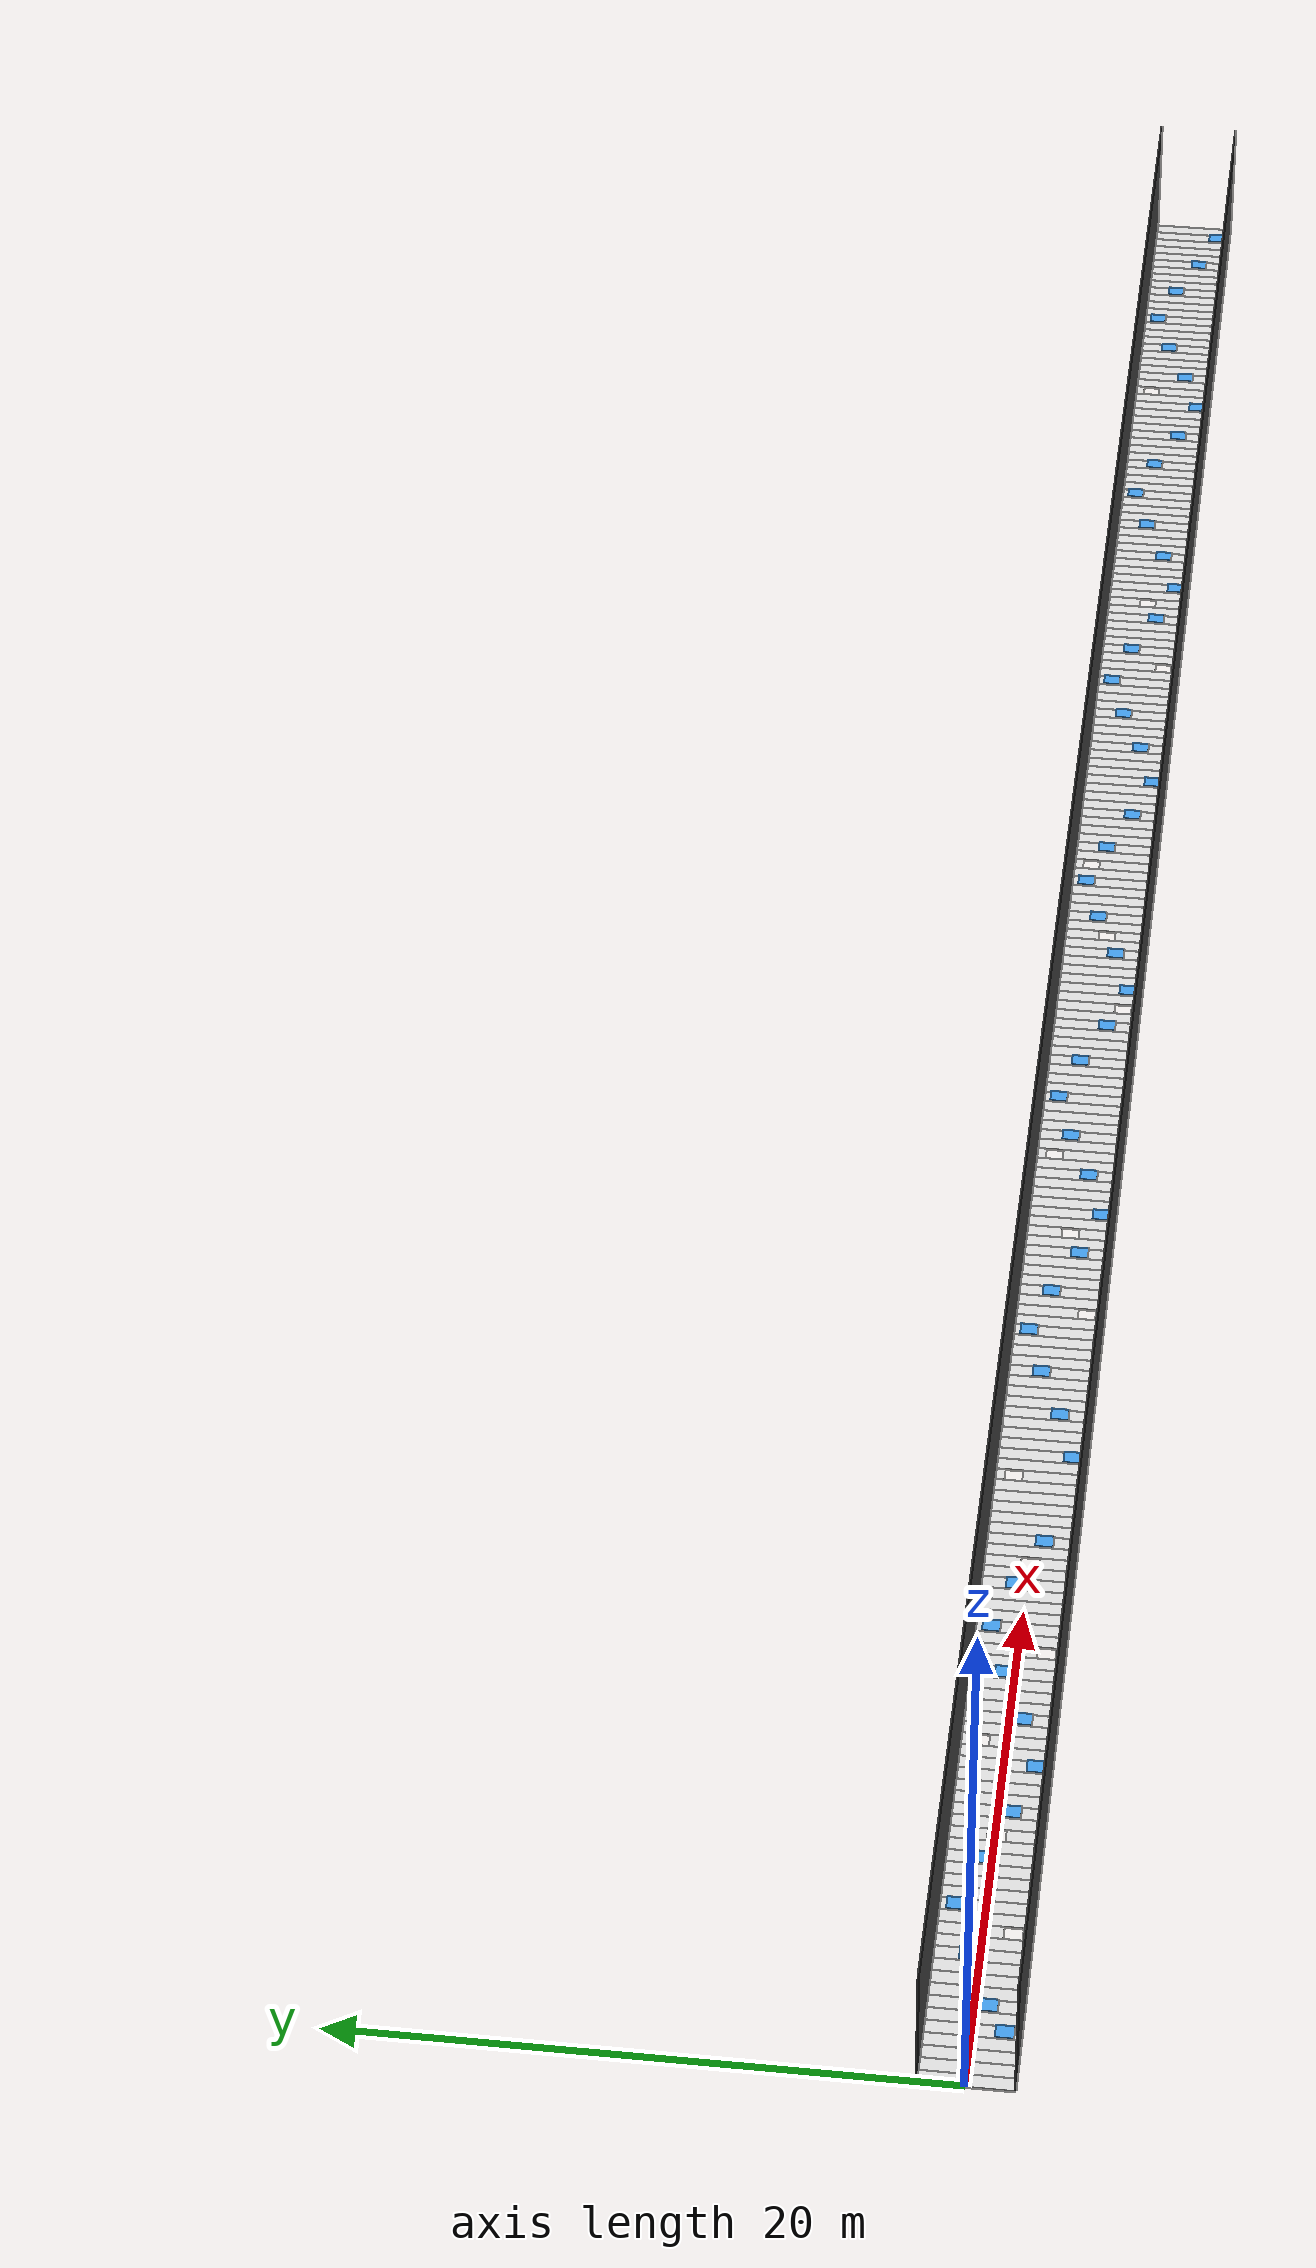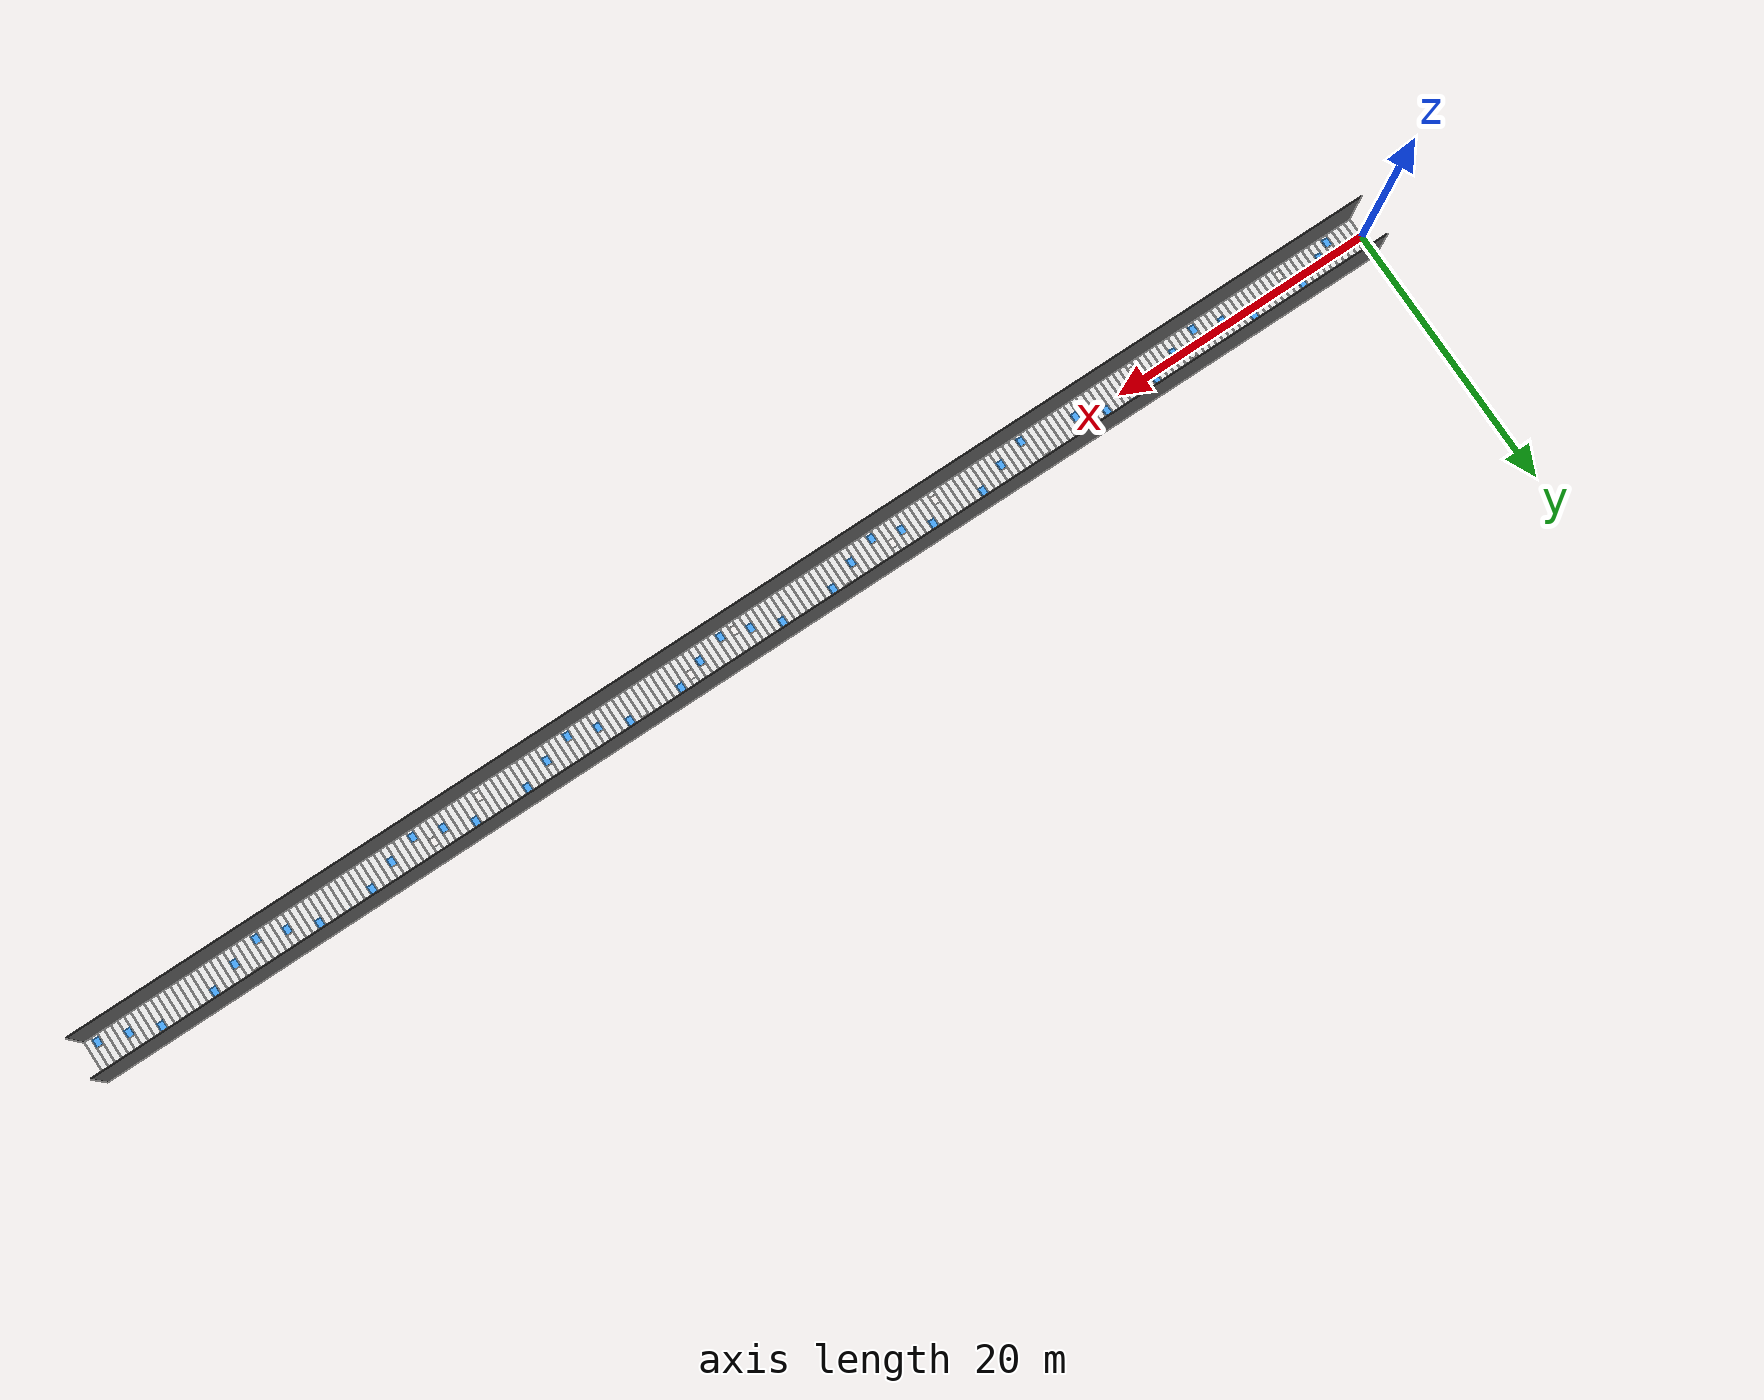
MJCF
<mujoco model="corridor_3x100">
<compiler angle="degree" autolimits="true"/>
<option timestep="0.005" gravity="0 0 -9.81"/>
<size njmax="4000" nconmax="1000"/>
<asset>
<material name="mat_floor" rgba="0.85 0.85 0.85 1"/>
<material name="mat_bump" rgba="0.25 0.6 0.9 1"/>
<material name="mat_wall" rgba="0.4 0.4 0.4 1"/>
</asset>
<worldbody>
<geom name="wall_left" type="box" size="50.000 0.025 2.500" pos="50.000 -1.525 2.500" material="mat_wall"/>
<geom name="wall_right" type="box" size="50.000 0.025 2.500" pos="50.000 1.525 2.500" material="mat_wall"/>
<geom type="box" material="mat_floor" name="flat_0" size="0.250 1.500 0.025" pos="0.250 0.000 0.025"/>
<geom type="box" material="mat_floor" name="flat_1" size="0.250 1.500 0.025" pos="0.750 0.000 0.025"/>
<geom type="box" material="mat_floor" name="flat_2" size="0.250 1.500 0.025" pos="1.250 0.000 0.025"/>
<geom type="box" material="mat_floor" name="flat_3" size="0.250 1.500 0.025" pos="1.750 0.000 0.025"/>
<geom type="box" material="mat_floor" name="flat_4" size="0.250 1.500 0.025" pos="2.250 0.000 0.025"/>
<geom type="box" name="bump_5" material="mat_bump" size="0.250 0.300 0.040" pos="2.250 -1.000 0.065"/>
<geom type="box" material="mat_floor" name="flat_6" size="0.250 1.500 0.025" pos="2.750 0.000 0.025"/>
<geom type="box" material="mat_floor" name="flat_7" size="0.250 1.500 0.025" pos="3.250 0.000 0.025"/>
<geom type="box" name="bump_8" material="mat_bump" size="0.250 0.300 0.040" pos="3.250 -0.400 0.065"/>
<geom type="box" material="mat_floor" name="flat_9" size="0.250 1.500 0.025" pos="3.750 0.000 0.025"/>
<geom type="box" material="mat_floor" name="flat_10" size="0.250 1.500 0.025" pos="4.250 0.000 0.025"/>
<geom type="box" material="mat_floor" name="flat_11" size="0.250 1.500 0.025" pos="4.750 0.000 0.025"/>
<geom type="box" material="mat_floor" name="flat_12" size="0.250 1.500 0.025" pos="5.250 0.000 0.025"/>
<geom type="box" name="bump_13" material="mat_bump" size="0.250 0.300 0.040" pos="5.250 0.400 0.065"/>
<geom type="box" material="mat_floor" name="flat_14" size="0.250 1.500 0.025" pos="5.750 0.000 0.025"/>
<geom type="box" material="mat_floor" name="flat_15" size="0.250 0.150 0.025" pos="6.250 -1.350 0.025"/>
<geom type="box" material="mat_floor" name="flat_16" size="0.250 1.050 0.025" pos="6.250 0.450 0.025"/>
<geom type="box" material="mat_floor" name="flat_17" size="0.250 1.500 0.025" pos="6.750 0.000 0.025"/>
<geom type="box" material="mat_floor" name="flat_18" size="0.250 1.500 0.025" pos="7.250 0.000 0.025"/>
<geom type="box" name="bump_19" material="mat_bump" size="0.250 0.300 0.040" pos="7.250 1.000 0.065"/>
<geom type="box" material="mat_floor" name="flat_20" size="0.250 1.500 0.025" pos="7.750 0.000 0.025"/>
<geom type="box" material="mat_floor" name="flat_21" size="0.250 1.500 0.025" pos="8.250 0.000 0.025"/>
<geom type="box" material="mat_floor" name="flat_22" size="0.250 1.500 0.025" pos="8.750 0.000 0.025"/>
<geom type="box" material="mat_floor" name="flat_23" size="0.250 1.500 0.025" pos="9.250 0.000 0.025"/>
<geom type="box" name="bump_24" material="mat_bump" size="0.250 0.300 0.040" pos="9.250 0.400 0.065"/>
<geom type="box" material="mat_floor" name="flat_25" size="0.250 1.500 0.025" pos="9.750 0.000 0.025"/>
<geom type="box" material="mat_floor" name="flat_26" size="0.250 0.600 0.025" pos="10.250 -0.900 0.025"/>
<geom type="box" material="mat_floor" name="flat_27" size="0.250 0.600 0.025" pos="10.250 0.900 0.025"/>
<geom type="box" material="mat_floor" name="flat_28" size="0.250 1.500 0.025" pos="10.750 0.000 0.025"/>
<geom type="box" material="mat_floor" name="flat_29" size="0.250 1.500 0.025" pos="11.250 0.000 0.025"/>
<geom type="box" name="bump_30" material="mat_bump" size="0.250 0.300 0.040" pos="11.250 -0.400 0.065"/>
<geom type="box" material="mat_floor" name="flat_31" size="0.250 1.500 0.025" pos="11.750 0.000 0.025"/>
<geom type="box" material="mat_floor" name="flat_32" size="0.250 1.500 0.025" pos="12.250 0.000 0.025"/>
<geom type="box" material="mat_floor" name="flat_33" size="0.250 1.500 0.025" pos="12.750 0.000 0.025"/>
<geom type="box" material="mat_floor" name="flat_34" size="0.250 1.500 0.025" pos="13.250 0.000 0.025"/>
<geom type="box" name="bump_35" material="mat_bump" size="0.250 0.300 0.040" pos="13.250 -1.000 0.065"/>
<geom type="box" material="mat_floor" name="flat_36" size="0.250 1.500 0.025" pos="13.750 0.000 0.025"/>
<geom type="box" material="mat_floor" name="flat_37" size="0.250 1.050 0.025" pos="14.250 -0.450 0.025"/>
<geom type="box" material="mat_floor" name="flat_38" size="0.250 0.150 0.025" pos="14.250 1.350 0.025"/>
<geom type="box" material="mat_floor" name="flat_39" size="0.250 1.500 0.025" pos="14.750 0.000 0.025"/>
<geom type="box" material="mat_floor" name="flat_40" size="0.250 1.500 0.025" pos="15.250 0.000 0.025"/>
<geom type="box" name="bump_41" material="mat_bump" size="0.250 0.300 0.040" pos="15.250 -0.400 0.065"/>
<geom type="box" material="mat_floor" name="flat_42" size="0.250 1.500 0.025" pos="15.750 0.000 0.025"/>
<geom type="box" material="mat_floor" name="flat_43" size="0.250 1.500 0.025" pos="16.250 0.000 0.025"/>
<geom type="box" material="mat_floor" name="flat_44" size="0.250 1.500 0.025" pos="16.750 0.000 0.025"/>
<geom type="box" material="mat_floor" name="flat_45" size="0.250 1.500 0.025" pos="17.250 0.000 0.025"/>
<geom type="box" name="bump_46" material="mat_bump" size="0.250 0.300 0.040" pos="17.250 0.400 0.065"/>
<geom type="box" material="mat_floor" name="flat_47" size="0.250 1.500 0.025" pos="17.750 0.000 0.025"/>
<geom type="box" material="mat_floor" name="flat_48" size="0.250 0.150 0.025" pos="18.250 -1.350 0.025"/>
<geom type="box" material="mat_floor" name="flat_49" size="0.250 1.050 0.025" pos="18.250 0.450 0.025"/>
<geom type="box" material="mat_floor" name="flat_50" size="0.250 1.500 0.025" pos="18.750 0.000 0.025"/>
<geom type="box" material="mat_floor" name="flat_51" size="0.250 1.500 0.025" pos="19.250 0.000 0.025"/>
<geom type="box" name="bump_52" material="mat_bump" size="0.250 0.300 0.040" pos="19.250 1.000 0.065"/>
<geom type="box" material="mat_floor" name="flat_53" size="0.250 1.500 0.025" pos="19.750 0.000 0.025"/>
<geom type="box" material="mat_floor" name="flat_54" size="0.250 1.500 0.025" pos="20.250 0.000 0.025"/>
<geom type="box" material="mat_floor" name="flat_55" size="0.250 1.500 0.025" pos="20.750 0.000 0.025"/>
<geom type="box" material="mat_floor" name="flat_56" size="0.250 1.500 0.025" pos="21.250 0.000 0.025"/>
<geom type="box" name="bump_57" material="mat_bump" size="0.250 0.300 0.040" pos="21.250 0.400 0.065"/>
<geom type="box" material="mat_floor" name="flat_58" size="0.250 1.500 0.025" pos="21.750 0.000 0.025"/>
<geom type="box" material="mat_floor" name="flat_59" size="0.250 0.600 0.025" pos="22.250 -0.900 0.025"/>
<geom type="box" material="mat_floor" name="flat_60" size="0.250 0.600 0.025" pos="22.250 0.900 0.025"/>
<geom type="box" material="mat_floor" name="flat_61" size="0.250 1.500 0.025" pos="22.750 0.000 0.025"/>
<geom type="box" material="mat_floor" name="flat_62" size="0.250 1.500 0.025" pos="23.250 0.000 0.025"/>
<geom type="box" name="bump_63" material="mat_bump" size="0.250 0.300 0.040" pos="23.250 -0.400 0.065"/>
<geom type="box" material="mat_floor" name="flat_64" size="0.250 1.500 0.025" pos="23.750 0.000 0.025"/>
<geom type="box" material="mat_floor" name="flat_65" size="0.250 1.500 0.025" pos="24.250 0.000 0.025"/>
<geom type="box" material="mat_floor" name="flat_66" size="0.250 1.500 0.025" pos="24.750 0.000 0.025"/>
<geom type="box" material="mat_floor" name="flat_67" size="0.250 1.500 0.025" pos="25.250 0.000 0.025"/>
<geom type="box" material="mat_floor" name="flat_68" size="0.250 1.500 0.025" pos="25.750 0.000 0.025"/>
<geom type="box" material="mat_floor" name="flat_69" size="0.250 1.050 0.025" pos="26.250 -0.450 0.025"/>
<geom type="box" material="mat_floor" name="flat_70" size="0.250 0.150 0.025" pos="26.250 1.350 0.025"/>
<geom type="box" material="mat_floor" name="flat_71" size="0.250 1.500 0.025" pos="26.750 0.000 0.025"/>
<geom type="box" material="mat_floor" name="flat_72" size="0.250 1.500 0.025" pos="27.250 0.000 0.025"/>
<geom type="box" name="bump_73" material="mat_bump" size="0.250 0.300 0.040" pos="27.250 -1.000 0.065"/>
<geom type="box" material="mat_floor" name="flat_74" size="0.250 1.500 0.025" pos="27.750 0.000 0.025"/>
<geom type="box" material="mat_floor" name="flat_75" size="0.250 1.500 0.025" pos="28.250 0.000 0.025"/>
<geom type="box" material="mat_floor" name="flat_76" size="0.250 1.500 0.025" pos="28.750 0.000 0.025"/>
<geom type="box" material="mat_floor" name="flat_77" size="0.250 1.500 0.025" pos="29.250 0.000 0.025"/>
<geom type="box" name="bump_78" material="mat_bump" size="0.250 0.300 0.040" pos="29.250 -0.400 0.065"/>
<geom type="box" material="mat_floor" name="flat_79" size="0.250 1.500 0.025" pos="29.750 0.000 0.025"/>
<geom type="box" material="mat_floor" name="flat_80" size="0.250 1.500 0.025" pos="30.250 0.000 0.025"/>
<geom type="box" material="mat_floor" name="flat_81" size="0.250 1.500 0.025" pos="30.750 0.000 0.025"/>
<geom type="box" material="mat_floor" name="flat_82" size="0.250 1.500 0.025" pos="31.250 0.000 0.025"/>
<geom type="box" name="bump_83" material="mat_bump" size="0.250 0.300 0.040" pos="31.250 0.400 0.065"/>
<geom type="box" material="mat_floor" name="flat_84" size="0.250 1.500 0.025" pos="31.750 0.000 0.025"/>
<geom type="box" material="mat_floor" name="flat_85" size="0.250 1.500 0.025" pos="32.250 0.000 0.025"/>
<geom type="box" material="mat_floor" name="flat_86" size="0.250 1.500 0.025" pos="32.750 0.000 0.025"/>
<geom type="box" material="mat_floor" name="flat_87" size="0.250 1.500 0.025" pos="33.250 0.000 0.025"/>
<geom type="box" name="bump_88" material="mat_bump" size="0.250 0.300 0.040" pos="33.250 1.000 0.065"/>
<geom type="box" material="mat_floor" name="flat_89" size="0.250 1.500 0.025" pos="33.750 0.000 0.025"/>
<geom type="box" material="mat_floor" name="flat_90" size="0.250 0.150 0.025" pos="34.250 -1.350 0.025"/>
<geom type="box" material="mat_floor" name="flat_91" size="0.250 1.050 0.025" pos="34.250 0.450 0.025"/>
<geom type="box" material="mat_floor" name="flat_92" size="0.250 1.500 0.025" pos="34.750 0.000 0.025"/>
<geom type="box" material="mat_floor" name="flat_93" size="0.250 1.500 0.025" pos="35.250 0.000 0.025"/>
<geom type="box" name="bump_94" material="mat_bump" size="0.250 0.300 0.040" pos="35.250 0.400 0.065"/>
<geom type="box" material="mat_floor" name="flat_95" size="0.250 1.500 0.025" pos="35.750 0.000 0.025"/>
<geom type="box" material="mat_floor" name="flat_96" size="0.250 1.500 0.025" pos="36.250 0.000 0.025"/>
<geom type="box" material="mat_floor" name="flat_97" size="0.250 1.500 0.025" pos="36.750 0.000 0.025"/>
<geom type="box" material="mat_floor" name="flat_98" size="0.250 1.500 0.025" pos="37.250 0.000 0.025"/>
<geom type="box" name="bump_99" material="mat_bump" size="0.250 0.300 0.040" pos="37.250 -0.400 0.065"/>
<geom type="box" material="mat_floor" name="flat_100" size="0.250 1.500 0.025" pos="37.750 0.000 0.025"/>
<geom type="box" material="mat_floor" name="flat_101" size="0.250 0.600 0.025" pos="38.250 -0.900 0.025"/>
<geom type="box" material="mat_floor" name="flat_102" size="0.250 0.600 0.025" pos="38.250 0.900 0.025"/>
<geom type="box" material="mat_floor" name="flat_103" size="0.250 1.500 0.025" pos="38.750 0.000 0.025"/>
<geom type="box" material="mat_floor" name="flat_104" size="0.250 1.500 0.025" pos="39.250 0.000 0.025"/>
<geom type="box" name="bump_105" material="mat_bump" size="0.250 0.300 0.040" pos="39.250 -1.000 0.065"/>
<geom type="box" material="mat_floor" name="flat_106" size="0.250 1.500 0.025" pos="39.750 0.000 0.025"/>
<geom type="box" material="mat_floor" name="flat_107" size="0.250 1.500 0.025" pos="40.250 0.000 0.025"/>
<geom type="box" material="mat_floor" name="flat_108" size="0.250 1.500 0.025" pos="40.750 0.000 0.025"/>
<geom type="box" material="mat_floor" name="flat_109" size="0.250 1.500 0.025" pos="41.250 0.000 0.025"/>
<geom type="box" name="bump_110" material="mat_bump" size="0.250 0.300 0.040" pos="41.250 -0.400 0.065"/>
<geom type="box" material="mat_floor" name="flat_111" size="0.250 1.500 0.025" pos="41.750 0.000 0.025"/>
<geom type="box" material="mat_floor" name="flat_112" size="0.250 1.050 0.025" pos="42.250 -0.450 0.025"/>
<geom type="box" material="mat_floor" name="flat_113" size="0.250 0.150 0.025" pos="42.250 1.350 0.025"/>
<geom type="box" material="mat_floor" name="flat_114" size="0.250 1.500 0.025" pos="42.750 0.000 0.025"/>
<geom type="box" material="mat_floor" name="flat_115" size="0.250 1.500 0.025" pos="43.250 0.000 0.025"/>
<geom type="box" name="bump_116" material="mat_bump" size="0.250 0.300 0.040" pos="43.250 0.400 0.065"/>
<geom type="box" material="mat_floor" name="flat_117" size="0.250 1.500 0.025" pos="43.750 0.000 0.025"/>
<geom type="box" material="mat_floor" name="flat_118" size="0.250 1.500 0.025" pos="44.250 0.000 0.025"/>
<geom type="box" material="mat_floor" name="flat_119" size="0.250 1.500 0.025" pos="44.750 0.000 0.025"/>
<geom type="box" material="mat_floor" name="flat_120" size="0.250 1.500 0.025" pos="45.250 0.000 0.025"/>
<geom type="box" name="bump_121" material="mat_bump" size="0.250 0.300 0.040" pos="45.250 1.000 0.065"/>
<geom type="box" material="mat_floor" name="flat_122" size="0.250 1.500 0.025" pos="45.750 0.000 0.025"/>
<geom type="box" material="mat_floor" name="flat_123" size="0.250 1.500 0.025" pos="46.250 0.000 0.025"/>
<geom type="box" material="mat_floor" name="flat_124" size="0.250 1.500 0.025" pos="46.750 0.000 0.025"/>
<geom type="box" material="mat_floor" name="flat_125" size="0.250 1.500 0.025" pos="47.250 0.000 0.025"/>
<geom type="box" name="bump_126" material="mat_bump" size="0.250 0.300 0.040" pos="47.250 0.400 0.065"/>
<geom type="box" material="mat_floor" name="flat_127" size="0.250 1.500 0.025" pos="47.750 0.000 0.025"/>
<geom type="box" material="mat_floor" name="flat_128" size="0.250 1.500 0.025" pos="48.250 0.000 0.025"/>
<geom type="box" material="mat_floor" name="flat_129" size="0.250 1.500 0.025" pos="48.750 0.000 0.025"/>
<geom type="box" material="mat_floor" name="flat_130" size="0.250 1.500 0.025" pos="49.250 0.000 0.025"/>
<geom type="box" name="bump_131" material="mat_bump" size="0.250 0.300 0.040" pos="49.250 -0.400 0.065"/>
<geom type="box" material="mat_floor" name="flat_132" size="0.250 1.500 0.025" pos="49.750 0.000 0.025"/>
<geom type="box" material="mat_floor" name="flat_133" size="0.250 0.150 0.025" pos="50.250 -1.350 0.025"/>
<geom type="box" material="mat_floor" name="flat_134" size="0.250 1.050 0.025" pos="50.250 0.450 0.025"/>
<geom type="box" material="mat_floor" name="flat_135" size="0.250 1.500 0.025" pos="50.750 0.000 0.025"/>
<geom type="box" material="mat_floor" name="flat_136" size="0.250 1.500 0.025" pos="51.250 0.000 0.025"/>
<geom type="box" name="bump_137" material="mat_bump" size="0.250 0.300 0.040" pos="51.250 -1.000 0.065"/>
<geom type="box" material="mat_floor" name="flat_138" size="0.250 1.500 0.025" pos="51.750 0.000 0.025"/>
<geom type="box" material="mat_floor" name="flat_139" size="0.250 1.500 0.025" pos="52.250 0.000 0.025"/>
<geom type="box" material="mat_floor" name="flat_140" size="0.250 1.500 0.025" pos="52.750 0.000 0.025"/>
<geom type="box" material="mat_floor" name="flat_141" size="0.250 1.500 0.025" pos="53.250 0.000 0.025"/>
<geom type="box" name="bump_142" material="mat_bump" size="0.250 0.300 0.040" pos="53.250 -0.400 0.065"/>
<geom type="box" material="mat_floor" name="flat_143" size="0.250 1.500 0.025" pos="53.750 0.000 0.025"/>
<geom type="box" material="mat_floor" name="flat_144" size="0.250 0.600 0.025" pos="54.250 -0.900 0.025"/>
<geom type="box" material="mat_floor" name="flat_145" size="0.250 0.600 0.025" pos="54.250 0.900 0.025"/>
<geom type="box" material="mat_floor" name="flat_146" size="0.250 1.500 0.025" pos="54.750 0.000 0.025"/>
<geom type="box" material="mat_floor" name="flat_147" size="0.250 1.500 0.025" pos="55.250 0.000 0.025"/>
<geom type="box" name="bump_148" material="mat_bump" size="0.250 0.300 0.040" pos="55.250 0.400 0.065"/>
<geom type="box" material="mat_floor" name="flat_149" size="0.250 1.500 0.025" pos="55.750 0.000 0.025"/>
<geom type="box" material="mat_floor" name="flat_150" size="0.250 1.500 0.025" pos="56.250 0.000 0.025"/>
<geom type="box" material="mat_floor" name="flat_151" size="0.250 1.500 0.025" pos="56.750 0.000 0.025"/>
<geom type="box" material="mat_floor" name="flat_152" size="0.250 1.500 0.025" pos="57.250 0.000 0.025"/>
<geom type="box" name="bump_153" material="mat_bump" size="0.250 0.300 0.040" pos="57.250 1.000 0.065"/>
<geom type="box" material="mat_floor" name="flat_154" size="0.250 1.500 0.025" pos="57.750 0.000 0.025"/>
<geom type="box" material="mat_floor" name="flat_155" size="0.250 1.050 0.025" pos="58.250 -0.450 0.025"/>
<geom type="box" material="mat_floor" name="flat_156" size="0.250 0.150 0.025" pos="58.250 1.350 0.025"/>
<geom type="box" material="mat_floor" name="flat_157" size="0.250 1.500 0.025" pos="58.750 0.000 0.025"/>
<geom type="box" material="mat_floor" name="flat_158" size="0.250 1.500 0.025" pos="59.250 0.000 0.025"/>
<geom type="box" name="bump_159" material="mat_bump" size="0.250 0.300 0.040" pos="59.250 0.400 0.065"/>
<geom type="box" material="mat_floor" name="flat_160" size="0.250 1.500 0.025" pos="59.750 0.000 0.025"/>
<geom type="box" material="mat_floor" name="flat_161" size="0.250 1.500 0.025" pos="60.250 0.000 0.025"/>
<geom type="box" material="mat_floor" name="flat_162" size="0.250 1.500 0.025" pos="60.750 0.000 0.025"/>
<geom type="box" material="mat_floor" name="flat_163" size="0.250 1.500 0.025" pos="61.250 0.000 0.025"/>
<geom type="box" name="bump_164" material="mat_bump" size="0.250 0.300 0.040" pos="61.250 -0.400 0.065"/>
<geom type="box" material="mat_floor" name="flat_165" size="0.250 1.500 0.025" pos="61.750 0.000 0.025"/>
<geom type="box" material="mat_floor" name="flat_166" size="0.250 1.500 0.025" pos="62.250 0.000 0.025"/>
<geom type="box" material="mat_floor" name="flat_167" size="0.250 1.500 0.025" pos="62.750 0.000 0.025"/>
<geom type="box" material="mat_floor" name="flat_168" size="0.250 1.500 0.025" pos="63.250 0.000 0.025"/>
<geom type="box" name="bump_169" material="mat_bump" size="0.250 0.300 0.040" pos="63.250 -1.000 0.065"/>
<geom type="box" material="mat_floor" name="flat_170" size="0.250 1.500 0.025" pos="63.750 0.000 0.025"/>
<geom type="box" material="mat_floor" name="flat_171" size="0.250 1.500 0.025" pos="64.250 0.000 0.025"/>
<geom type="box" material="mat_floor" name="flat_172" size="0.250 1.500 0.025" pos="64.750 0.000 0.025"/>
<geom type="box" material="mat_floor" name="flat_173" size="0.250 1.500 0.025" pos="65.250 0.000 0.025"/>
<geom type="box" name="bump_174" material="mat_bump" size="0.250 0.300 0.040" pos="65.250 -0.400 0.065"/>
<geom type="box" material="mat_floor" name="flat_175" size="0.250 1.500 0.025" pos="65.750 0.000 0.025"/>
<geom type="box" material="mat_floor" name="flat_176" size="0.250 1.500 0.025" pos="66.250 0.000 0.025"/>
<geom type="box" material="mat_floor" name="flat_177" size="0.250 1.500 0.025" pos="66.750 0.000 0.025"/>
<geom type="box" material="mat_floor" name="flat_178" size="0.250 1.500 0.025" pos="67.250 0.000 0.025"/>
<geom type="box" name="bump_179" material="mat_bump" size="0.250 0.300 0.040" pos="67.250 0.400 0.065"/>
<geom type="box" material="mat_floor" name="flat_180" size="0.250 1.500 0.025" pos="67.750 0.000 0.025"/>
<geom type="box" material="mat_floor" name="flat_181" size="0.250 1.500 0.025" pos="68.250 0.000 0.025"/>
<geom type="box" material="mat_floor" name="flat_182" size="0.250 1.500 0.025" pos="68.750 0.000 0.025"/>
<geom type="box" material="mat_floor" name="flat_183" size="0.250 1.500 0.025" pos="69.250 0.000 0.025"/>
<geom type="box" name="bump_184" material="mat_bump" size="0.250 0.300 0.040" pos="69.250 1.000 0.065"/>
<geom type="box" material="mat_floor" name="flat_185" size="0.250 1.500 0.025" pos="69.750 0.000 0.025"/>
<geom type="box" material="mat_floor" name="flat_186" size="0.250 0.150 0.025" pos="70.250 -1.350 0.025"/>
<geom type="box" material="mat_floor" name="flat_187" size="0.250 1.050 0.025" pos="70.250 0.450 0.025"/>
<geom type="box" material="mat_floor" name="flat_188" size="0.250 1.500 0.025" pos="70.750 0.000 0.025"/>
<geom type="box" material="mat_floor" name="flat_189" size="0.250 1.500 0.025" pos="71.250 0.000 0.025"/>
<geom type="box" name="bump_190" material="mat_bump" size="0.250 0.300 0.040" pos="71.250 0.400 0.065"/>
<geom type="box" material="mat_floor" name="flat_191" size="0.250 1.500 0.025" pos="71.750 0.000 0.025"/>
<geom type="box" material="mat_floor" name="flat_192" size="0.250 1.500 0.025" pos="72.250 0.000 0.025"/>
<geom type="box" material="mat_floor" name="flat_193" size="0.250 1.500 0.025" pos="72.750 0.000 0.025"/>
<geom type="box" material="mat_floor" name="flat_194" size="0.250 1.500 0.025" pos="73.250 0.000 0.025"/>
<geom type="box" name="bump_195" material="mat_bump" size="0.250 0.300 0.040" pos="73.250 -0.400 0.065"/>
<geom type="box" material="mat_floor" name="flat_196" size="0.250 1.500 0.025" pos="73.750 0.000 0.025"/>
<geom type="box" material="mat_floor" name="flat_197" size="0.250 0.600 0.025" pos="74.250 -0.900 0.025"/>
<geom type="box" material="mat_floor" name="flat_198" size="0.250 0.600 0.025" pos="74.250 0.900 0.025"/>
<geom type="box" material="mat_floor" name="flat_199" size="0.250 1.500 0.025" pos="74.750 0.000 0.025"/>
<geom type="box" material="mat_floor" name="flat_200" size="0.250 1.500 0.025" pos="75.250 0.000 0.025"/>
<geom type="box" name="bump_201" material="mat_bump" size="0.250 0.300 0.040" pos="75.250 -1.000 0.065"/>
<geom type="box" material="mat_floor" name="flat_202" size="0.250 1.500 0.025" pos="75.750 0.000 0.025"/>
<geom type="box" material="mat_floor" name="flat_203" size="0.250 1.500 0.025" pos="76.250 0.000 0.025"/>
<geom type="box" material="mat_floor" name="flat_204" size="0.250 1.500 0.025" pos="76.750 0.000 0.025"/>
<geom type="box" material="mat_floor" name="flat_205" size="0.250 1.500 0.025" pos="77.250 0.000 0.025"/>
<geom type="box" name="bump_206" material="mat_bump" size="0.250 0.300 0.040" pos="77.250 -0.400 0.065"/>
<geom type="box" material="mat_floor" name="flat_207" size="0.250 1.500 0.025" pos="77.750 0.000 0.025"/>
<geom type="box" material="mat_floor" name="flat_208" size="0.250 1.500 0.025" pos="78.250 0.000 0.025"/>
<geom type="box" material="mat_floor" name="flat_209" size="0.250 1.500 0.025" pos="78.750 0.000 0.025"/>
<geom type="box" material="mat_floor" name="flat_210" size="0.250 1.500 0.025" pos="79.250 0.000 0.025"/>
<geom type="box" name="bump_211" material="mat_bump" size="0.250 0.300 0.040" pos="79.250 0.400 0.065"/>
<geom type="box" material="mat_floor" name="flat_212" size="0.250 1.500 0.025" pos="79.750 0.000 0.025"/>
<geom type="box" material="mat_floor" name="flat_213" size="0.250 1.500 0.025" pos="80.250 0.000 0.025"/>
<geom type="box" material="mat_floor" name="flat_214" size="0.250 1.500 0.025" pos="80.750 0.000 0.025"/>
<geom type="box" material="mat_floor" name="flat_215" size="0.250 1.500 0.025" pos="81.250 0.000 0.025"/>
<geom type="box" name="bump_216" material="mat_bump" size="0.250 0.300 0.040" pos="81.250 1.000 0.065"/>
<geom type="box" material="mat_floor" name="flat_217" size="0.250 1.500 0.025" pos="81.750 0.000 0.025"/>
<geom type="box" material="mat_floor" name="flat_218" size="0.250 1.500 0.025" pos="82.250 0.000 0.025"/>
<geom type="box" material="mat_floor" name="flat_219" size="0.250 1.500 0.025" pos="82.750 0.000 0.025"/>
<geom type="box" material="mat_floor" name="flat_220" size="0.250 1.500 0.025" pos="83.250 0.000 0.025"/>
<geom type="box" name="bump_221" material="mat_bump" size="0.250 0.300 0.040" pos="83.250 0.400 0.065"/>
<geom type="box" material="mat_floor" name="flat_222" size="0.250 1.500 0.025" pos="83.750 0.000 0.025"/>
<geom type="box" material="mat_floor" name="flat_223" size="0.250 1.500 0.025" pos="84.250 0.000 0.025"/>
<geom type="box" material="mat_floor" name="flat_224" size="0.250 1.500 0.025" pos="84.750 0.000 0.025"/>
<geom type="box" material="mat_floor" name="flat_225" size="0.250 1.500 0.025" pos="85.250 0.000 0.025"/>
<geom type="box" name="bump_226" material="mat_bump" size="0.250 0.300 0.040" pos="85.250 -0.400 0.065"/>
<geom type="box" material="mat_floor" name="flat_227" size="0.250 1.500 0.025" pos="85.750 0.000 0.025"/>
<geom type="box" material="mat_floor" name="flat_228" size="0.250 1.500 0.025" pos="86.250 0.000 0.025"/>
<geom type="box" material="mat_floor" name="flat_229" size="0.250 1.500 0.025" pos="86.750 0.000 0.025"/>
<geom type="box" material="mat_floor" name="flat_230" size="0.250 1.500 0.025" pos="87.250 0.000 0.025"/>
<geom type="box" name="bump_231" material="mat_bump" size="0.250 0.300 0.040" pos="87.250 -1.000 0.065"/>
<geom type="box" material="mat_floor" name="flat_232" size="0.250 1.500 0.025" pos="87.750 0.000 0.025"/>
<geom type="box" material="mat_floor" name="flat_233" size="0.250 1.050 0.025" pos="88.250 -0.450 0.025"/>
<geom type="box" material="mat_floor" name="flat_234" size="0.250 0.150 0.025" pos="88.250 1.350 0.025"/>
<geom type="box" material="mat_floor" name="flat_235" size="0.250 1.500 0.025" pos="88.750 0.000 0.025"/>
<geom type="box" material="mat_floor" name="flat_236" size="0.250 1.500 0.025" pos="89.250 0.000 0.025"/>
<geom type="box" name="bump_237" material="mat_bump" size="0.250 0.300 0.040" pos="89.250 -0.400 0.065"/>
<geom type="box" material="mat_floor" name="flat_238" size="0.250 1.500 0.025" pos="89.750 0.000 0.025"/>
<geom type="box" material="mat_floor" name="flat_239" size="0.250 1.500 0.025" pos="90.250 0.000 0.025"/>
<geom type="box" material="mat_floor" name="flat_240" size="0.250 1.500 0.025" pos="90.750 0.000 0.025"/>
<geom type="box" material="mat_floor" name="flat_241" size="0.250 1.500 0.025" pos="91.250 0.000 0.025"/>
<geom type="box" name="bump_242" material="mat_bump" size="0.250 0.300 0.040" pos="91.250 0.400 0.065"/>
<geom type="box" material="mat_floor" name="flat_243" size="0.250 1.500 0.025" pos="91.750 0.000 0.025"/>
<geom type="box" material="mat_floor" name="flat_244" size="0.250 1.500 0.025" pos="92.250 0.000 0.025"/>
<geom type="box" material="mat_floor" name="flat_245" size="0.250 1.500 0.025" pos="92.750 0.000 0.025"/>
<geom type="box" material="mat_floor" name="flat_246" size="0.250 1.500 0.025" pos="93.250 0.000 0.025"/>
<geom type="box" name="bump_247" material="mat_bump" size="0.250 0.300 0.040" pos="93.250 1.000 0.065"/>
<geom type="box" material="mat_floor" name="flat_248" size="0.250 1.500 0.025" pos="93.750 0.000 0.025"/>
<geom type="box" material="mat_floor" name="flat_249" size="0.250 1.500 0.025" pos="94.250 0.000 0.025"/>
<geom type="box" material="mat_floor" name="flat_250" size="0.250 1.500 0.025" pos="94.750 0.000 0.025"/>
<geom type="box" material="mat_floor" name="flat_251" size="0.250 1.500 0.025" pos="95.250 0.000 0.025"/>
<geom type="box" name="bump_252" material="mat_bump" size="0.250 0.300 0.040" pos="95.250 0.400 0.065"/>
<geom type="box" material="mat_floor" name="flat_253" size="0.250 1.500 0.025" pos="95.750 0.000 0.025"/>
<geom type="box" material="mat_floor" name="flat_254" size="0.250 1.500 0.025" pos="96.250 0.000 0.025"/>
<geom type="box" material="mat_floor" name="flat_255" size="0.250 1.500 0.025" pos="96.750 0.000 0.025"/>
<geom type="box" material="mat_floor" name="flat_256" size="0.250 1.500 0.025" pos="97.250 0.000 0.025"/>
<geom type="box" name="bump_257" material="mat_bump" size="0.250 0.300 0.040" pos="97.250 -0.400 0.065"/>
<geom type="box" material="mat_floor" name="flat_258" size="0.250 1.500 0.025" pos="97.750 0.000 0.025"/>
<geom type="box" material="mat_floor" name="flat_259" size="0.250 1.500 0.025" pos="98.250 0.000 0.025"/>
<geom type="box" material="mat_floor" name="flat_260" size="0.250 1.500 0.025" pos="98.750 0.000 0.025"/>
<geom type="box" material="mat_floor" name="flat_261" size="0.250 1.500 0.025" pos="99.250 0.000 0.025"/>
<geom type="box" name="bump_262" material="mat_bump" size="0.250 0.300 0.040" pos="99.250 -1.000 0.065"/>
<geom type="box" material="mat_floor" name="flat_263" size="0.250 1.500 0.025" pos="99.750 0.000 0.025"/>
</worldbody>
</mujoco>
